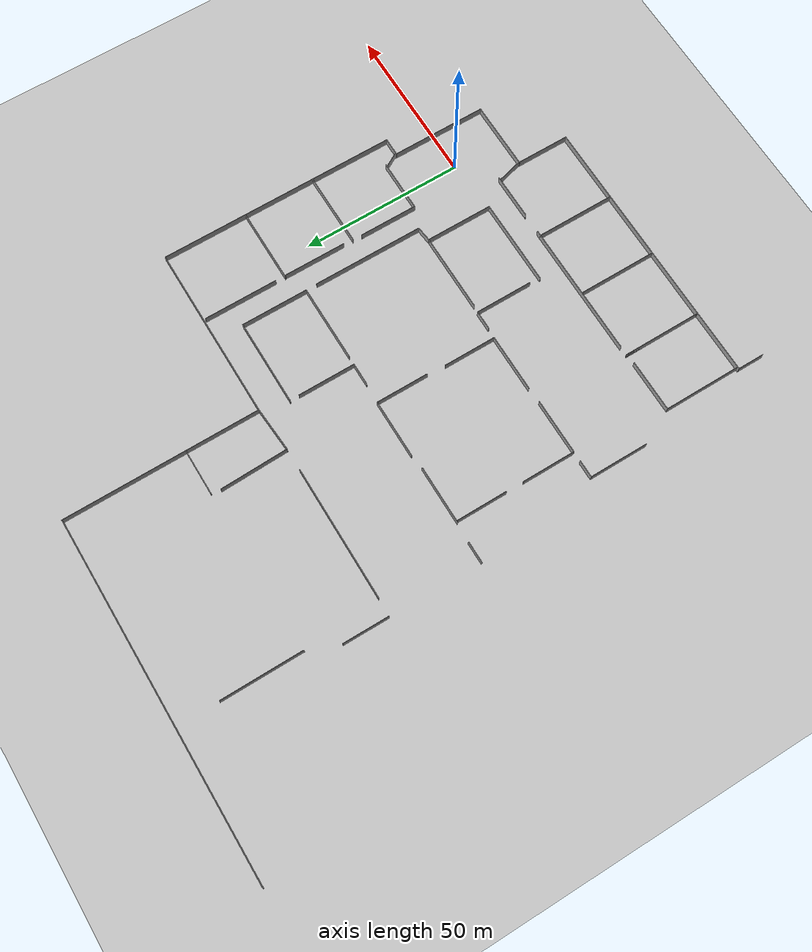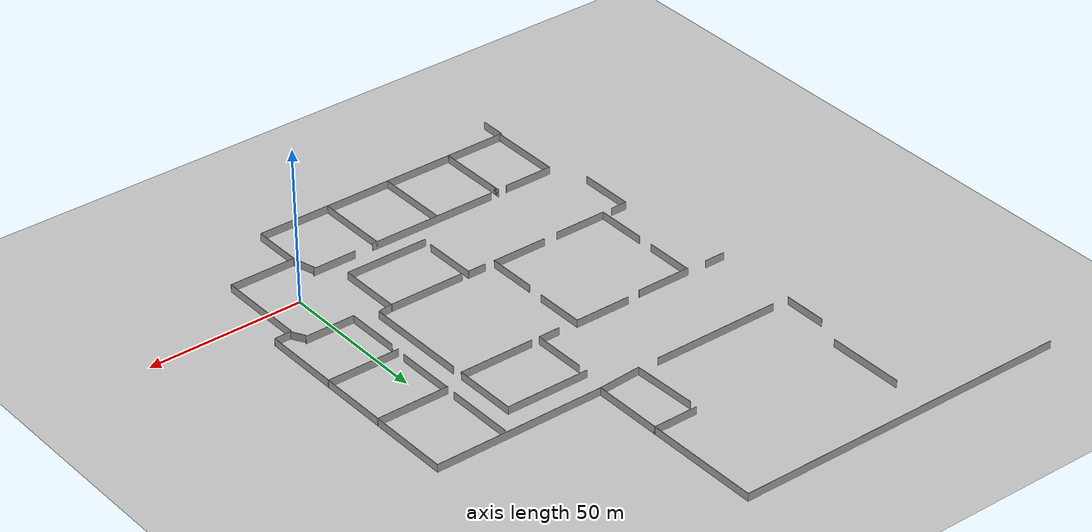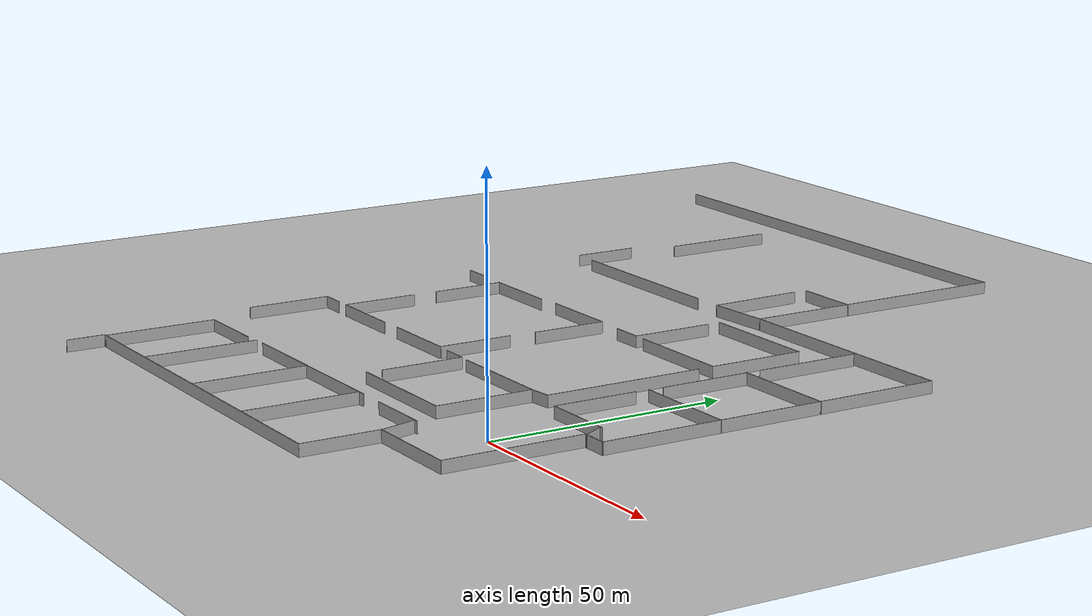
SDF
<sdf version="1.7">
 <world name="default">
  <model name="ground_plane">
   <static>1</static>
   <link name="link">
    <collision name="collision">
     <geometry><plane><normal>0 0 1</normal><size>100 100</size></plane></geometry>
     <surface>
      <contact><collide_bitmask>65535</collide_bitmask></contact>
      <friction><ode><mu>100</mu><mu2>50</mu2></ode></friction>
     </surface>
    </collision>
    <visual name="visual">
     <cast_shadows>0</cast_shadows>
     <geometry><plane><normal>0 0 1</normal><size>100 100</size></plane></geometry>
     <material>
      <script><uri>file://media/materials/scripts/gazebo.material</uri><name>Gazebo/Grey</name></script>
     </material>
    </visual>
   </link>
  </model>
  <model name="DohertyFinal">
   <pose>-129.277 42.9973 0 0 -0 0</pose>
   <link name="Wall_102">
    <collision name="Wall_102_Collision">
     <geometry><box><size>41.75 0.15 2.5</size></box></geometry>
     <pose>0 0 1.25 0 -0 0</pose>
    </collision>
    <visual name="Wall_102_Visual">
     <pose>0 0 1.25 0 -0 0</pose>
     <geometry><box><size>41.75 0.15 2.5</size></box></geometry>
     <material>
      <script><uri>file://media/materials/scripts/gazebo.material</uri><name>Gazebo/Grey</name></script>
      <ambient>1 1 1 1</ambient>
     </material>
     <meta><layer>0</layer></meta>
    </visual>
    <pose>50.228 43.0752 0 0 -0 0</pose>
   </link>
   <link name="Wall_104">
    <collision name="Wall_104_Collision">
     <geometry><box><size>14.1764 0.15 2.5</size></box></geometry>
     <pose>0 0 1.25 0 -0 0</pose>
    </collision>
    <visual name="Wall_104_Visual">
     <pose>0 0 1.25 0 -0 0</pose>
     <geometry><box><size>14.1764 0.15 2.5</size></box></geometry>
     <material>
      <script><uri>file://media/materials/scripts/gazebo.material</uri><name>Gazebo/Grey</name></script>
      <ambient>1 1 1 1</ambient>
     </material>
     <meta><layer>0</layer></meta>
    </visual>
    <pose>84.8878 43.5555 0 0 -0 0.068536</pose>
   </link>
   <link name="Wall_110">
    <collision name="Wall_110_Collision">
     <geometry><box><size>25 0.15 2.5</size></box></geometry>
     <pose>0 0 1.25 0 -0 0</pose>
    </collision>
    <visual name="Wall_110_Visual">
     <pose>0 0 1.25 0 -0 0</pose>
     <geometry><box><size>25 0.15 2.5</size></box></geometry>
     <material>
      <script><uri>file://media/materials/scripts/gazebo.material</uri><name>Gazebo/Grey</name></script>
      <ambient>1 1 1 1</ambient>
     </material>
     <meta><layer>0</layer></meta>
    </visual>
    <pose>27.724 79.1132 0 0 -0 -1.5708</pose>
   </link>
   <link name="Wall_115">
    <collision name="Wall_115_Collision">
     <geometry><box><size>14.1116 0.15 2.5</size></box></geometry>
     <pose>0 0 1.25 0 -0 0</pose>
    </collision>
    <visual name="Wall_115_Visual">
     <pose>0 0 1.25 0 -0 0</pose>
     <geometry><box><size>14.1116 0.15 2.5</size></box></geometry>
     <material>
      <script><uri>file://media/materials/scripts/gazebo.material</uri><name>Gazebo/Grey</name></script>
      <ambient>1 1 1 1</ambient>
     </material>
     <meta><layer>0</layer></meta>
    </visual>
    <pose>23.8692 50.2161 0 0 -0 -1.57661</pose>
   </link>
   <link name="Wall_120">
    <collision name="Wall_120_Collision">
     <geometry><box><size>14.5 0.15 2.5</size></box></geometry>
     <pose>0 0 1.25 0 -0 0</pose>
    </collision>
    <visual name="Wall_120_Visual">
     <pose>0 0 1.25 0 -0 0</pose>
     <geometry><box><size>14.5 0.15 2.5</size></box></geometry>
     <material>
      <script><uri>file://media/materials/scripts/gazebo.material</uri><name>Gazebo/Grey</name></script>
      <ambient>1 1 1 1</ambient>
     </material>
     <meta><layer>0</layer></meta>
    </visual>
    <pose>84.8377 66.8253 0 0 -0 3.14159</pose>
   </link>
   <link name="Wall_122">
    <collision name="Wall_122_Collision">
     <geometry><box><size>21.0214 0.15 2.5</size></box></geometry>
     <pose>0 0 1.25 0 -0 0</pose>
    </collision>
    <visual name="Wall_122_Visual">
     <pose>0 0 1.25 0 -0 0</pose>
     <geometry><box><size>21.0214 0.15 2.5</size></box></geometry>
     <material>
      <script><uri>file://media/materials/scripts/gazebo.material</uri><name>Gazebo/Grey</name></script>
      <ambient>1 1 1 1</ambient>
     </material>
     <meta><layer>0</layer></meta>
    </visual>
    <pose>77.5701 53.506 0 0 -0 -1.54004</pose>
   </link>
   <link name="Wall_131">
    <collision name="Wall_131_Collision">
     <geometry><box><size>6.75 0.15 2.5</size></box></geometry>
     <pose>0 0 1.25 0 -0 0</pose>
    </collision>
    <visual name="Wall_131_Visual">
     <pose>0 0 1.25 0 -0 0</pose>
     <geometry><box><size>6.75 0.15 2.5</size></box></geometry>
     <material>
      <script><uri>file://media/materials/scripts/gazebo.material</uri><name>Gazebo/Grey</name></script>
      <ambient>1 1 1 1</ambient>
     </material>
     <meta><layer>0</layer></meta>
    </visual>
    <pose>26.6301 14.8839 0 0 -0 0</pose>
   </link>
   <link name="Wall_133">
    <collision name="Wall_133_Collision">
     <geometry><box><size>18 0.15 2.5</size></box></geometry>
     <pose>0 0 1.25 0 -0 0</pose>
    </collision>
    <visual name="Wall_133_Visual">
     <pose>0 0 1.25 0 -0 0</pose>
     <geometry><box><size>18 0.15 2.5</size></box></geometry>
     <material>
      <script><uri>file://media/materials/scripts/gazebo.material</uri><name>Gazebo/Grey</name></script>
      <ambient>1 1 1 1</ambient>
     </material>
     <meta><layer>0</layer></meta>
    </visual>
    <pose>45.0929 14.5109 0 0 -0 0</pose>
   </link>
   <link name="Wall_135">
    <collision name="Wall_135_Collision">
     <geometry><box><size>18.25 0.15 2.5</size></box></geometry>
     <pose>0 0 1.25 0 -0 0</pose>
    </collision>
    <visual name="Wall_135_Visual">
     <pose>0 0 1.25 0 -0 0</pose>
     <geometry><box><size>18.25 0.15 2.5</size></box></geometry>
     <material>
      <script><uri>file://media/materials/scripts/gazebo.material</uri><name>Gazebo/Grey</name></script>
      <ambient>1 1 1 1</ambient>
     </material>
     <meta><layer>0</layer></meta>
    </visual>
    <pose>67.6842 15.1528 0 0 -0 0</pose>
   </link>
   <link name="Wall_136">
    <collision name="Wall_136_Collision">
     <geometry><box><size>16.25 0.15 2.5</size></box></geometry>
     <pose>0 0 1.25 0 -0 0</pose>
    </collision>
    <visual name="Wall_136_Visual">
     <pose>0 0 1.25 0 -0 0</pose>
     <geometry><box><size>16.25 0.15 2.5</size></box></geometry>
     <material>
      <script><uri>file://media/materials/scripts/gazebo.material</uri><name>Gazebo/Grey</name></script>
      <ambient>1 1 1 1</ambient>
     </material>
     <meta><layer>0</layer></meta>
    </visual>
    <pose>76.7342 7.10281 0 0 -0 -1.5708</pose>
   </link>
   <link name="Wall_138">
    <collision name="Wall_138_Collision">
     <geometry><box><size>16.25 0.15 2.5</size></box></geometry>
     <pose>0 0 1.25 0 -0 0</pose>
    </collision>
    <visual name="Wall_138_Visual">
     <pose>0 0 1.25 0 -0 0</pose>
     <geometry><box><size>16.25 0.15 2.5</size></box></geometry>
     <material>
      <script><uri>file://media/materials/scripts/gazebo.material</uri><name>Gazebo/Grey</name></script>
      <ambient>1 1 1 1</ambient>
     </material>
     <meta><layer>0</layer></meta>
    </visual>
    <pose>76.2863 -14.7216 0 0 -0 -1.5708</pose>
   </link>
   <link name="Wall_139">
    <collision name="Wall_139_Collision">
     <geometry><box><size>18 0.15 2.5</size></box></geometry>
     <pose>0 0 1.25 0 -0 0</pose>
    </collision>
    <visual name="Wall_139_Visual">
     <pose>0 0 1.25 0 -0 0</pose>
     <geometry><box><size>18 0.15 2.5</size></box></geometry>
     <material>
      <script><uri>file://media/materials/scripts/gazebo.material</uri><name>Gazebo/Grey</name></script>
      <ambient>1 1 1 1</ambient>
     </material>
     <meta><layer>0</layer></meta>
    </visual>
    <pose>67.3613 -22.7716 0 0 -0 3.14159</pose>
   </link>
   <link name="Wall_141">
    <collision name="Wall_141_Collision">
     <geometry><box><size>17.25 0.15 2.5</size></box></geometry>
     <pose>0 0 1.25 0 -0 0</pose>
    </collision>
    <visual name="Wall_141_Visual">
     <pose>0 0 1.25 0 -0 0</pose>
     <geometry><box><size>17.25 0.15 2.5</size></box></geometry>
     <material>
      <script><uri>file://media/materials/scripts/gazebo.material</uri><name>Gazebo/Grey</name></script>
      <ambient>1 1 1 1</ambient>
     </material>
     <meta><layer>0</layer></meta>
    </visual>
    <pose>44.9491 -23.0399 0 0 -0 3.14159</pose>
   </link>
   <link name="Wall_142">
    <collision name="Wall_142_Collision">
     <geometry><box><size>16.5 0.15 2.5</size></box></geometry>
     <pose>0 0 1.25 0 -0 0</pose>
    </collision>
    <visual name="Wall_142_Visual">
     <pose>0 0 1.25 0 -0 0</pose>
     <geometry><box><size>16.5 0.15 2.5</size></box></geometry>
     <material>
      <script><uri>file://media/materials/scripts/gazebo.material</uri><name>Gazebo/Grey</name></script>
      <ambient>1 1 1 1</ambient>
     </material>
     <meta><layer>0</layer></meta>
    </visual>
    <pose>36.3991 -14.8649 0 0 -0 1.5708</pose>
   </link>
   <link name="Wall_144">
    <collision name="Wall_144_Collision">
     <geometry><box><size>15.75 0.15 2.5</size></box></geometry>
     <pose>0 0 1.25 0 -0 0</pose>
    </collision>
    <visual name="Wall_144_Visual">
     <pose>0 0 1.25 0 -0 0</pose>
     <geometry><box><size>15.75 0.15 2.5</size></box></geometry>
     <material>
      <script><uri>file://media/materials/scripts/gazebo.material</uri><name>Gazebo/Grey</name></script>
      <ambient>1 1 1 1</ambient>
     </material>
     <meta><layer>0</layer></meta>
    </visual>
    <pose>36.4889 6.58453 0 0 -0 1.5708</pose>
   </link>
   <link name="Wall_151">
    <collision name="Wall_151_Collision">
     <geometry><box><size>5.5 0.15 2.5</size></box></geometry>
     <pose>0 0 1.25 0 -0 0</pose>
    </collision>
    <visual name="Wall_151_Visual">
     <pose>0 0 1.25 0 -0 0</pose>
     <geometry><box><size>5.5 0.15 2.5</size></box></geometry>
     <material>
      <script><uri>file://media/materials/scripts/gazebo.material</uri><name>Gazebo/Grey</name></script>
      <ambient>1 1 1 1</ambient>
     </material>
     <meta><layer>0</layer></meta>
    </visual>
    <pose>30.6044 -23.0488 0 0 -0 3.14159</pose>
   </link>
   <link name="Wall_152">
    <collision name="Wall_152_Collision">
     <geometry><box><size>18.25 0.15 2.5</size></box></geometry>
     <pose>0 0 1.25 0 -0 0</pose>
    </collision>
    <visual name="Wall_152_Visual">
     <pose>0 0 1.25 0 -0 0</pose>
     <geometry><box><size>18.25 0.15 2.5</size></box></geometry>
     <material>
      <script><uri>file://media/materials/scripts/gazebo.material</uri><name>Gazebo/Grey</name></script>
      <ambient>1 1 1 1</ambient>
     </material>
     <meta><layer>0</layer></meta>
    </visual>
    <pose>27.9294 -32.0988 0 0 -0 -1.5708</pose>
   </link>
   <link name="Wall_154">
    <collision name="Wall_154_Collision">
     <geometry><box><size>6 0.15 2.5</size></box></geometry>
     <pose>0 0 1.25 0 -0 0</pose>
    </collision>
    <visual name="Wall_154_Visual">
     <pose>0 0 1.25 0 -0 0</pose>
     <geometry><box><size>6 0.15 2.5</size></box></geometry>
     <material>
      <script><uri>file://media/materials/scripts/gazebo.material</uri><name>Gazebo/Grey</name></script>
      <ambient>1 1 1 1</ambient>
     </material>
     <meta><layer>0</layer></meta>
    </visual>
    <pose>82.4208 -23.0488 0 0 -0 0</pose>
   </link>
   <link name="Wall_155">
    <collision name="Wall_155_Collision">
     <geometry><box><size>17.75 0.15 2.5</size></box></geometry>
     <pose>0 0 1.25 0 -0 0</pose>
    </collision>
    <visual name="Wall_155_Visual">
     <pose>0 0 1.25 0 -0 0</pose>
     <geometry><box><size>17.75 0.15 2.5</size></box></geometry>
     <material>
      <script><uri>file://media/materials/scripts/gazebo.material</uri><name>Gazebo/Grey</name></script>
      <ambient>1 1 1 1</ambient>
     </material>
     <meta><layer>0</layer></meta>
    </visual>
    <pose>85.3458 -31.8488 0 0 -0 -1.5708</pose>
   </link>
   <link name="Wall_157">
    <collision name="Wall_157_Collision">
     <geometry><box><size>27.25 0.15 2.5</size></box></geometry>
     <pose>0 0 1.25 0 -0 0</pose>
    </collision>
    <visual name="Wall_157_Visual">
     <pose>0 0 1.25 0 -0 0</pose>
     <geometry><box><size>27.25 0.15 2.5</size></box></geometry>
     <material>
      <script><uri>file://media/materials/scripts/gazebo.material</uri><name>Gazebo/Grey</name></script>
      <ambient>1 1 1 1</ambient>
     </material>
     <meta><layer>0</layer></meta>
    </visual>
    <pose>98.5019 -43.9103 0 0 -0 0</pose>
   </link>
   <link name="Wall_158">
    <collision name="Wall_158_Collision">
     <geometry><box><size>20.75 0.15 2.5</size></box></geometry>
     <pose>0 0 1.25 0 -0 0</pose>
    </collision>
    <visual name="Wall_158_Visual">
     <pose>0 0 1.25 0 -0 0</pose>
     <geometry><box><size>20.75 0.15 2.5</size></box></geometry>
     <material>
      <script><uri>file://media/materials/scripts/gazebo.material</uri><name>Gazebo/Grey</name></script>
      <ambient>1 1 1 1</ambient>
     </material>
     <meta><layer>0</layer></meta>
    </visual>
    <pose>112.052 -33.6103 0 0 -0 1.5708</pose>
   </link>
   <link name="Wall_159">
    <collision name="Wall_159_Collision">
     <geometry><box><size>24.75 0.15 2.5</size></box></geometry>
     <pose>0 0 1.25 0 -0 0</pose>
    </collision>
    <visual name="Wall_159_Visual">
     <pose>0 0 1.25 0 -0 0</pose>
     <geometry><box><size>24.75 0.15 2.5</size></box></geometry>
     <material>
      <script><uri>file://media/materials/scripts/gazebo.material</uri><name>Gazebo/Grey</name></script>
      <ambient>1 1 1 1</ambient>
     </material>
     <meta><layer>0</layer></meta>
    </visual>
    <pose>99.7519 -23.3103 0 0 -0 3.14159</pose>
   </link>
   <link name="Wall_161">
    <collision name="Wall_161_Collision">
     <geometry><box><size>7 0.15 2.5</size></box></geometry>
     <pose>0 0 1.25 0 -0 0</pose>
    </collision>
    <visual name="Wall_161_Visual">
     <pose>0 0 1.25 0 -0 0</pose>
     <geometry><box><size>7 0.15 2.5</size></box></geometry>
     <material>
      <script><uri>file://media/materials/scripts/gazebo.material</uri><name>Gazebo/Grey</name></script>
      <ambient>1 1 1 1</ambient>
     </material>
     <meta><layer>0</layer></meta>
    </visual>
    <pose>86.4512 14.823 0 0 -0 0</pose>
   </link>
   <link name="Wall_162">
    <collision name="Wall_162_Collision">
     <geometry><box><size>17.75 0.15 2.5</size></box></geometry>
     <pose>0 0 1.25 0 -0 0</pose>
    </collision>
    <visual name="Wall_162_Visual">
     <pose>0 0 1.25 0 -0 0</pose>
     <geometry><box><size>17.75 0.15 2.5</size></box></geometry>
     <material>
      <script><uri>file://media/materials/scripts/gazebo.material</uri><name>Gazebo/Grey</name></script>
      <ambient>1 1 1 1</ambient>
     </material>
     <meta><layer>0</layer></meta>
    </visual>
    <pose>89.8762 23.623 0 0 -0 1.5708</pose>
   </link>
   <link name="Wall_164">
    <collision name="Wall_164_Collision">
     <geometry><box><size>27 0.15 2.5</size></box></geometry>
     <pose>0 0 1.25 0 -0 0</pose>
    </collision>
    <visual name="Wall_164_Visual">
     <pose>0 0 1.25 0 -0 0</pose>
     <geometry><box><size>27 0.15 2.5</size></box></geometry>
     <material>
      <script><uri>file://media/materials/scripts/gazebo.material</uri><name>Gazebo/Grey</name></script>
      <ambient>1 1 1 1</ambient>
     </material>
     <meta><layer>0</layer></meta>
    </visual>
    <pose>103.191 35.3636 0 0 -0 0</pose>
   </link>
   <link name="Wall_165">
    <collision name="Wall_165_Collision">
     <geometry><box><size>20.75 0.15 2.5</size></box></geometry>
     <pose>0 0 1.25 0 -0 0</pose>
    </collision>
    <visual name="Wall_165_Visual">
     <pose>0 0 1.25 0 -0 0</pose>
     <geometry><box><size>20.75 0.15 2.5</size></box></geometry>
     <material>
      <script><uri>file://media/materials/scripts/gazebo.material</uri><name>Gazebo/Grey</name></script>
      <ambient>1 1 1 1</ambient>
     </material>
     <meta><layer>0</layer></meta>
    </visual>
    <pose>116.616 25.0636 0 0 -0 -1.5708</pose>
   </link>
   <link name="Wall_166">
    <collision name="Wall_166_Collision">
     <geometry><box><size>24.25 0.15 2.5</size></box></geometry>
     <pose>0 0 1.25 0 -0 0</pose>
    </collision>
    <visual name="Wall_166_Visual">
     <pose>0 0 1.25 0 -0 0</pose>
     <geometry><box><size>24.25 0.15 2.5</size></box></geometry>
     <material>
      <script><uri>file://media/materials/scripts/gazebo.material</uri><name>Gazebo/Grey</name></script>
      <ambient>1 1 1 1</ambient>
     </material>
     <meta><layer>0</layer></meta>
    </visual>
    <pose>104.566 14.7636 0 0 -0 3.14159</pose>
   </link>
   <link name="Wall_168">
    <collision name="Wall_168_Collision">
     <geometry><box><size>34.25 0.15 2.5</size></box></geometry>
     <pose>0 0 1.25 0 -0 0</pose>
    </collision>
    <visual name="Wall_168_Visual">
     <pose>0 0 1.25 0 -0 0</pose>
     <geometry><box><size>34.25 0.15 2.5</size></box></geometry>
     <material>
      <script><uri>file://media/materials/scripts/gazebo.material</uri><name>Gazebo/Grey</name></script>
      <ambient>1 1 1 1</ambient>
     </material>
     <meta><layer>0</layer></meta>
    </visual>
    <pose>116.726 -5.7575 0 0 -0 -1.57079</pose>
   </link>
   <link name="Wall_172">
    <collision name="Wall_172_Collision">
     <geometry><box><size>4.85103 0.15 2.5</size></box></geometry>
     <pose>0 0 1.25 0 -0 0</pose>
    </collision>
    <visual name="Wall_172_Visual">
     <pose>0 0 1.25 0 -0 0</pose>
     <geometry><box><size>4.85103 0.15 2.5</size></box></geometry>
     <material>
      <script><uri>file://media/materials/scripts/gazebo.material</uri><name>Gazebo/Grey</name></script>
      <ambient>1 1 1 1</ambient>
     </material>
     <meta><layer>0</layer></meta>
    </visual>
    <pose>114.389 -23.0589 0 0 -0 -3.03444</pose>
   </link>
   <link name="Wall_176">
    <collision name="Wall_176_Collision">
     <geometry><box><size>24 0.15 2.5</size></box></geometry>
     <pose>0 0 1.25 0 -0 0</pose>
    </collision>
    <visual name="Wall_176_Visual">
     <pose>0 0 1.25 0 -0 0</pose>
     <geometry><box><size>24 0.15 2.5</size></box></geometry>
     <material>
      <script><uri>file://media/materials/scripts/gazebo.material</uri><name>Gazebo/Grey</name></script>
      <ambient>1 1 1 1</ambient>
     </material>
     <meta><layer>0</layer></meta>
    </visual>
    <pose>33.2891 -63.8566 0 0 -0 1.5708</pose>
   </link>
   <link name="Wall_177">
    <collision name="Wall_177_Collision">
     <geometry><box><size>16.25 0.15 2.5</size></box></geometry>
     <pose>0 0 1.25 0 -0 0</pose>
    </collision>
    <visual name="Wall_177_Visual">
     <pose>0 0 1.25 0 -0 0</pose>
     <geometry><box><size>16.25 0.15 2.5</size></box></geometry>
     <material>
      <script><uri>file://media/materials/scripts/gazebo.material</uri><name>Gazebo/Grey</name></script>
      <ambient>1 1 1 1</ambient>
     </material>
     <meta><layer>0</layer></meta>
    </visual>
    <pose>41.3391 -51.9316 0 0 -0 0</pose>
   </link>
   <link name="Wall_179">
    <collision name="Wall_179_Collision">
     <geometry><box><size>24.25 0.15 2.5</size></box></geometry>
     <pose>0 0 1.25 0 -0 0</pose>
    </collision>
    <visual name="Wall_179_Visual">
     <pose>0 0 1.25 0 -0 0</pose>
     <geometry><box><size>24.25 0.15 2.5</size></box></geometry>
     <material>
      <script><uri>file://media/materials/scripts/gazebo.material</uri><name>Gazebo/Grey</name></script>
      <ambient>1 1 1 1</ambient>
     </material>
     <meta><layer>0</layer></meta>
    </visual>
    <pose>52.5459 -63.5513 0 0 -0 -1.5708</pose>
   </link>
   <link name="Wall_181">
    <collision name="Wall_181_Collision">
     <geometry><box><size>42.75 0.15 2.5</size></box></geometry>
     <pose>0 0 1.25 0 -0 0</pose>
    </collision>
    <visual name="Wall_181_Visual">
     <pose>0 0 1.25 0 -0 0</pose>
     <geometry><box><size>42.75 0.15 2.5</size></box></geometry>
     <material>
      <script><uri>file://media/materials/scripts/gazebo.material</uri><name>Gazebo/Grey</name></script>
      <ambient>1 1 1 1</ambient>
     </material>
     <meta><layer>0</layer></meta>
    </visual>
    <pose>76.6367 -51.5013 0 0 -0 0</pose>
   </link>
   <link name="Wall_183">
    <collision name="Wall_183_Collision">
     <geometry><box><size>14.4709 0.15 2.5</size></box></geometry>
     <pose>0 0 1.25 0 -0 0</pose>
    </collision>
    <visual name="Wall_183_Visual">
     <pose>0 0 1.25 0 -0 0</pose>
     <geometry><box><size>14.4709 0.15 2.5</size></box></geometry>
     <material>
      <script><uri>file://media/materials/scripts/gazebo.material</uri><name>Gazebo/Grey</name></script>
      <ambient>1 1 1 1</ambient>
     </material>
     <meta><layer>0</layer></meta>
    </visual>
    <pose>111.337 -51.5013 0 0 -0 0</pose>
   </link>
   <link name="Wall_186">
    <collision name="Wall_186_Collision">
     <geometry><box><size>8 0.15 2.5</size></box></geometry>
     <pose>0 0 1.25 0 -0 0</pose>
    </collision>
    <visual name="Wall_186_Visual">
     <pose>0 0 1.25 0 -0 0</pose>
     <geometry><box><size>8 0.15 2.5</size></box></geometry>
     <material>
      <script><uri>file://media/materials/scripts/gazebo.material</uri><name>Gazebo/Grey</name></script>
      <ambient>1 1 1 1</ambient>
     </material>
     <meta><layer>0</layer></meta>
    </visual>
    <pose>118.867 -55.5716 0 0 -0 -1.309</pose>
   </link>
   <link name="Wall_188">
    <collision name="Wall_188_Collision">
     <geometry><box><size>24.25 0.15 2.5</size></box></geometry>
     <pose>0 0 1.25 0 -0 0</pose>
    </collision>
    <visual name="Wall_188_Visual">
     <pose>0 0 1.25 0 -0 0</pose>
     <geometry><box><size>24.25 0.15 2.5</size></box></geometry>
     <material>
      <script><uri>file://media/materials/scripts/gazebo.material</uri><name>Gazebo/Grey</name></script>
      <ambient>1 1 1 1</ambient>
     </material>
     <meta><layer>0</layer></meta>
    </visual>
    <pose>96.3621 -63.5513 0 0 -0 -1.5708</pose>
   </link>
   <link name="Wall_190">
    <collision name="Wall_190_Collision">
     <geometry><box><size>24 0.15 2.5</size></box></geometry>
     <pose>0 0 1.25 0 -0 0</pose>
    </collision>
    <visual name="Wall_190_Visual">
     <pose>0 0 1.25 0 -0 0</pose>
     <geometry><box><size>24 0.15 2.5</size></box></geometry>
     <material>
      <script><uri>file://media/materials/scripts/gazebo.material</uri><name>Gazebo/Grey</name></script>
      <ambient>1 1 1 1</ambient>
     </material>
     <meta><layer>0</layer></meta>
    </visual>
    <pose>74.8726 -63.7054 0 0 -0 -1.5708</pose>
   </link>
   <link name="Wall_192">
    <collision name="Wall_192_Collision">
     <geometry><box><size>24 0.15 2.5</size></box></geometry>
     <pose>0 0 1.25 0 -0 0</pose>
    </collision>
    <visual name="Wall_192_Visual">
     <pose>0 0 1.25 0 -0 0</pose>
     <geometry><box><size>24 0.15 2.5</size></box></geometry>
     <material>
      <script><uri>file://media/materials/scripts/gazebo.material</uri><name>Gazebo/Grey</name></script>
      <ambient>1 1 1 1</ambient>
     </material>
     <meta><layer>0</layer></meta>
    </visual>
    <pose>52.5459 -63.4263 0 0 -0 -1.5708</pose>
   </link>
   <link name="Wall_69">
    <collision name="Wall_69_Collision">
     <geometry><box><size>109.75 0.15 2.5</size></box></geometry>
     <pose>0 0 1.25 0 -0 0</pose>
    </collision>
    <visual name="Wall_69_Visual">
     <pose>0 0 1.25 0 -0 0</pose>
     <geometry><box><size>109.75 0.15 2.5</size></box></geometry>
     <material>
      <script><uri>file://media/materials/scripts/gazebo.material</uri><name>Gazebo/Grey</name></script>
      <ambient>1 1 1 1</ambient>
     </material>
     <meta><layer>0</layer></meta>
    </visual>
    <pose>37.0845 104.386 0 0 -0 0</pose>
   </link>
   <link name="Wall_70">
    <collision name="Wall_70_Collision">
     <geometry><box><size>60.5 0.15 2.5</size></box></geometry>
     <pose>0 0 1.25 0 -0 0</pose>
    </collision>
    <visual name="Wall_70_Visual">
     <pose>0 0 1.25 0 -0 0</pose>
     <geometry><box><size>60.5 0.15 2.5</size></box></geometry>
     <material>
      <script><uri>file://media/materials/scripts/gazebo.material</uri><name>Gazebo/Grey</name></script>
      <ambient>1 1 1 1</ambient>
     </material>
     <meta><layer>0</layer></meta>
    </visual>
    <pose>91.8845 74.2108 0 0 -0 -1.5708</pose>
   </link>
   <link name="Wall_71">
    <collision name="Wall_71_Collision">
     <geometry><box><size>55 0.15 2.5</size></box></geometry>
     <pose>0 0 1.25 0 -0 0</pose>
    </collision>
    <visual name="Wall_71_Visual">
     <pose>0 0 1.25 0 -0 0</pose>
     <geometry><box><size>55 0.15 2.5</size></box></geometry>
     <material>
      <script><uri>file://media/materials/scripts/gazebo.material</uri><name>Gazebo/Grey</name></script>
      <ambient>1 1 1 1</ambient>
     </material>
     <meta><layer>0</layer></meta>
    </visual>
    <pose>119.31 44.0358 0 0 -0 0</pose>
   </link>
   <link name="Wall_72">
    <collision name="Wall_72_Collision">
     <geometry><box><size>74.25 0.15 2.5</size></box></geometry>
     <pose>0 0 1.25 0 -0 0</pose>
    </collision>
    <visual name="Wall_72_Visual">
     <pose>0 0 1.25 0 -0 0</pose>
     <geometry><box><size>74.25 0.15 2.5</size></box></geometry>
     <material>
      <script><uri>file://media/materials/scripts/gazebo.material</uri><name>Gazebo/Grey</name></script>
      <ambient>1 1 1 1</ambient>
     </material>
     <meta><layer>0</layer></meta>
    </visual>
    <pose>146.735 6.98575 0 0 -0 -1.5708</pose>
   </link>
   <link name="Wall_73">
    <collision name="Wall_73_Collision">
     <geometry><box><size>5.75 0.15 2.5</size></box></geometry>
     <pose>0 0 1.25 0 -0 0</pose>
    </collision>
    <visual name="Wall_73_Visual">
     <pose>0 0 1.25 0 -0 0</pose>
     <geometry><box><size>5.75 0.15 2.5</size></box></geometry>
     <material>
      <script><uri>file://media/materials/scripts/gazebo.material</uri><name>Gazebo/Grey</name></script>
      <ambient>1 1 1 1</ambient>
     </material>
     <meta><layer>0</layer></meta>
    </visual>
    <pose>143.935 -30.0642 0 0 -0 3.14159</pose>
   </link>
   <link name="Wall_74">
    <collision name="Wall_74_Collision">
     <geometry><box><size>29.5 0.15 2.5</size></box></geometry>
     <pose>0 0 1.25 0 -0 0</pose>
    </collision>
    <visual name="Wall_74_Visual">
     <pose>0 0 1.25 0 -0 0</pose>
     <geometry><box><size>29.5 0.15 2.5</size></box></geometry>
     <material>
      <script><uri>file://media/materials/scripts/gazebo.material</uri><name>Gazebo/Grey</name></script>
      <ambient>1 1 1 1</ambient>
     </material>
     <meta><layer>0</layer></meta>
    </visual>
    <pose>141.135 -44.7392 0 0 -0 -1.5708</pose>
   </link>
   <link name="Wall_75">
    <collision name="Wall_75_Collision">
     <geometry><box><size>21.5 0.15 2.5</size></box></geometry>
     <pose>0 0 1.25 0 -0 0</pose>
    </collision>
    <visual name="Wall_75_Visual">
     <pose>0 0 1.25 0 -0 0</pose>
     <geometry><box><size>21.5 0.15 2.5</size></box></geometry>
     <material>
      <script><uri>file://media/materials/scripts/gazebo.material</uri><name>Gazebo/Grey</name></script>
      <ambient>1 1 1 1</ambient>
     </material>
     <meta><layer>0</layer></meta>
    </visual>
    <pose>130.46 -59.4142 0 0 -0 3.14159</pose>
   </link>
   <link name="Wall_76">
    <collision name="Wall_76_Collision">
     <geometry><box><size>16.5 0.15 2.5</size></box></geometry>
     <pose>0 0 1.25 0 -0 0</pose>
    </collision>
    <visual name="Wall_76_Visual">
     <pose>0 0 1.25 0 -0 0</pose>
     <geometry><box><size>16.5 0.15 2.5</size></box></geometry>
     <material>
      <script><uri>file://media/materials/scripts/gazebo.material</uri><name>Gazebo/Grey</name></script>
      <ambient>1 1 1 1</ambient>
     </material>
     <meta><layer>0</layer></meta>
    </visual>
    <pose>119.785 -67.5892 0 0 -0 -1.5708</pose>
   </link>
   <link name="Wall_77">
    <collision name="Wall_77_Collision">
     <geometry><box><size>87.25 0.15 2.5</size></box></geometry>
     <pose>0 0 1.25 0 -0 0</pose>
    </collision>
    <visual name="Wall_77_Visual">
     <pose>0 0 1.25 0 -0 0</pose>
     <geometry><box><size>87.25 0.15 2.5</size></box></geometry>
     <material>
      <script><uri>file://media/materials/scripts/gazebo.material</uri><name>Gazebo/Grey</name></script>
      <ambient>1 1 1 1</ambient>
     </material>
     <meta><layer>0</layer></meta>
    </visual>
    <pose>76.2345 -75.7642 0 0 -0 3.14159</pose>
   </link>
   <link name="Wall_78">
    <collision name="Wall_78_Collision">
     <geometry><box><size>8.25 0.15 2.5</size></box></geometry>
     <pose>0 0 1.25 0 -0 0</pose>
    </collision>
    <visual name="Wall_78_Visual">
     <pose>0 0 1.25 0 -0 0</pose>
     <geometry><box><size>8.25 0.15 2.5</size></box></geometry>
     <material>
      <script><uri>file://media/materials/scripts/gazebo.material</uri><name>Gazebo/Grey</name></script>
      <ambient>1 1 1 1</ambient>
     </material>
     <meta><layer>0</layer></meta>
    </visual>
    <pose>32.6845 -79.8143 0 0 -0 -1.5708</pose>
   </link>
   <link name="Wall_85">
    <collision name="Wall_85_Collision">
     <geometry><box><size>22.75 0.15 2.5</size></box></geometry>
     <pose>0 0 1.25 0 -0 0</pose>
    </collision>
    <visual name="Wall_85_Visual">
     <pose>0 0 1.25 0 -0 0</pose>
     <geometry><box><size>22.75 0.15 2.5</size></box></geometry>
     <material>
      <script><uri>file://media/materials/scripts/gazebo.material</uri><name>Gazebo/Grey</name></script>
      <ambient>1 1 1 1</ambient>
     </material>
     <meta><layer>0</layer></meta>
    </visual>
    <pose>123.738 32.0909 0 0 -0 -1.5708</pose>
   </link>
   <link name="Wall_87">
    <collision name="Wall_87_Collision">
     <geometry><box><size>19.5 0.15 2.5</size></box></geometry>
     <pose>0 0 1.25 0 -0 0</pose>
    </collision>
    <visual name="Wall_87_Visual">
     <pose>0 0 1.25 0 -0 0</pose>
     <geometry><box><size>19.5 0.15 2.5</size></box></geometry>
     <material>
      <script><uri>file://media/materials/scripts/gazebo.material</uri><name>Gazebo/Grey</name></script>
      <ambient>1 1 1 1</ambient>
     </material>
     <meta><layer>0</layer></meta>
    </visual>
    <pose>123.738 8.04017 0 0 -0 -1.5708</pose>
   </link>
   <link name="Wall_89">
    <collision name="Wall_89_Collision">
     <geometry><box><size>18 0.15 2.5</size></box></geometry>
     <pose>0 0 1.25 0 -0 0</pose>
    </collision>
    <visual name="Wall_89_Visual">
     <pose>0 0 1.25 0 -0 0</pose>
     <geometry><box><size>18 0.15 2.5</size></box></geometry>
     <material>
      <script><uri>file://media/materials/scripts/gazebo.material</uri><name>Gazebo/Grey</name></script>
      <ambient>1 1 1 1</ambient>
     </material>
     <meta><layer>0</layer></meta>
    </visual>
    <pose>123.417 -16.5646 0 0 -0 -1.5708</pose>
   </link>
   <link name="Wall_90">
    <collision name="Wall_90_Collision">
     <geometry><box><size>16.25 0.15 2.5</size></box></geometry>
     <pose>0 0 1.25 0 -0 0</pose>
    </collision>
    <visual name="Wall_90_Visual">
     <pose>0 0 1.25 0 -0 0</pose>
     <geometry><box><size>16.25 0.15 2.5</size></box></geometry>
     <material>
      <script><uri>file://media/materials/scripts/gazebo.material</uri><name>Gazebo/Grey</name></script>
      <ambient>1 1 1 1</ambient>
     </material>
     <meta><layer>0</layer></meta>
    </visual>
    <pose>131.467 -25.4896 0 0 -0 0</pose>
   </link>
   <link name="Wall_93">
    <collision name="Wall_93_Collision">
     <geometry><box><size>5 0.15 2.5</size></box></geometry>
     <pose>0 0 1.25 0 -0 0</pose>
    </collision>
    <visual name="Wall_93_Visual">
     <pose>0 0 1.25 0 -0 0</pose>
     <geometry><box><size>5 0.15 2.5</size></box></geometry>
     <material>
      <script><uri>file://media/materials/scripts/gazebo.material</uri><name>Gazebo/Grey</name></script>
      <ambient>1 1 1 1</ambient>
     </material>
     <meta><layer>0</layer></meta>
    </visual>
    <pose>140.404 -28.0285 0 0 -0 -1.0472</pose>
   </link>
   <link name="Wall_95">
    <collision name="Wall_95_Collision">
     <geometry><box><size>23.5 0.15 2.5</size></box></geometry>
     <pose>0 0 1.25 0 -0 0</pose>
    </collision>
    <visual name="Wall_95_Visual">
     <pose>0 0 1.25 0 -0 0</pose>
     <geometry><box><size>23.5 0.15 2.5</size></box></geometry>
     <material>
      <script><uri>file://media/materials/scripts/gazebo.material</uri><name>Gazebo/Grey</name></script>
      <ambient>1 1 1 1</ambient>
     </material>
     <meta><layer>0</layer></meta>
    </visual>
    <pose>135.14 -4.74589 0 0 -0 0</pose>
   </link>
   <link name="Wall_97">
    <collision name="Wall_97_Collision">
     <geometry><box><size>23.5 0.15 2.5</size></box></geometry>
     <pose>0 0 1.25 0 -0 0</pose>
    </collision>
    <visual name="Wall_97_Visual">
     <pose>0 0 1.25 0 -0 0</pose>
     <geometry><box><size>23.5 0.15 2.5</size></box></geometry>
     <material>
      <script><uri>file://media/materials/scripts/gazebo.material</uri><name>Gazebo/Grey</name></script>
      <ambient>1 1 1 1</ambient>
     </material>
     <meta><layer>0</layer></meta>
    </visual>
    <pose>135.14 17.7204 0 0 -0 0</pose>
   </link>
   <static>1</static>
  </model>
 </world>
</sdf>
